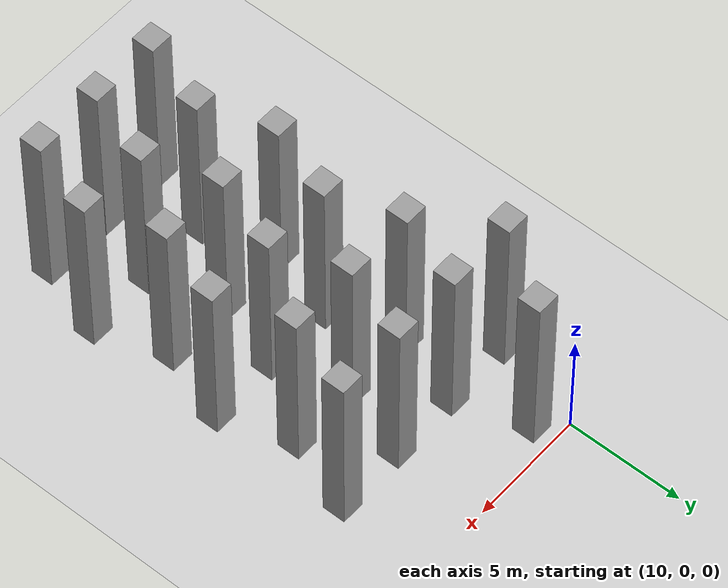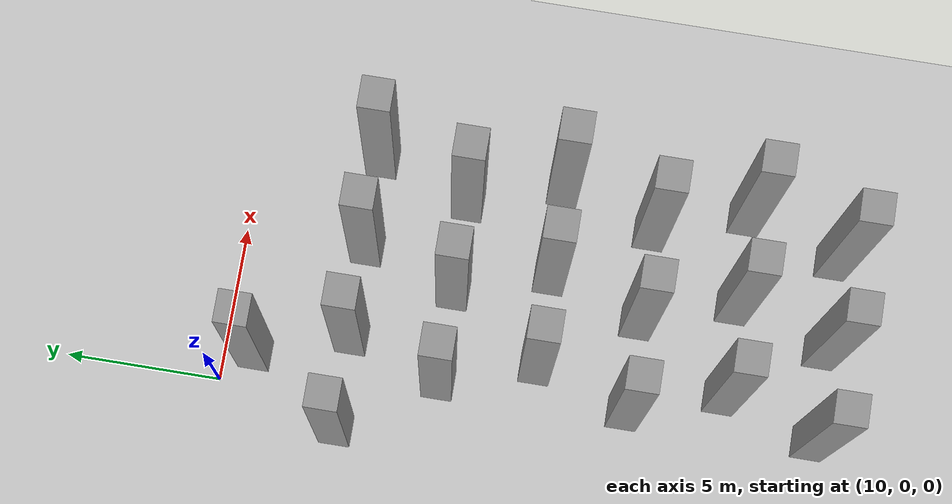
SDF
<sdf version="1.7">
 <world name="default">
  <model name="ground_plane">
   <static>1</static>
   <link name="link">
    <collision name="collision">
     <geometry><plane><normal>0 0 1</normal><size>100 100</size></plane></geometry>
     <surface>
      <contact><collide_bitmask>65535</collide_bitmask></contact>
      <friction><ode><mu>100</mu><mu2>50</mu2></ode></friction>
     </surface>
    </collision>
    <visual name="visual">
     <cast_shadows>0</cast_shadows>
     <geometry><plane><normal>0 0 1</normal><size>100 100</size></plane></geometry>
     <material>
      <script><uri>file://media/materials/scripts/gazebo.material</uri><name>Gazebo/Grey</name></script>
     </material>
    </visual>
   </link>
  </model>
  <model name="unit_box_static10">
   <link name="link">
    <inertial>
     <mass>1</mass>
     <inertia>
      <ixx>0.166667</ixx>
      <ixy>0</ixy>
      <ixz>0</ixz>
      <iyy>0.166667</iyy>
      <iyz>0</iyz>
      <izz>0.166667</izz>
     </inertia>
    </inertial>
    <visual name="visual">
     <geometry><box><size>1 1 8</size></box></geometry>
     <material>
      <script><name>Gazebo/Grey</name><uri>file://media/materials/scripts/gazebo.material</uri></script>
      <shader type="pixel"/>
     </material>
    </visual>
    <collision name="collision">
     <geometry><box><size>1 1 8</size></box></geometry>
     <surface>
      <friction>
       <ode><mu>1</mu><mu2>1</mu2><fdir1>0 0 0</fdir1><slip1>0</slip1><slip2>0</slip2></ode>
       <torsional>
        <coefficient>1</coefficient>
        <patch_radius>0</patch_radius>
        <surface_radius>0</surface_radius>
        <use_patch_radius>1</use_patch_radius>
        <ode><slip>0</slip></ode>
       </torsional>
      </friction>
      <bounce><restitution_coefficient>0</restitution_coefficient><threshold>1e+06</threshold></bounce>
      <contact>
       <collide_without_contact>0</collide_without_contact>
       <collide_without_contact_bitmask>1</collide_without_contact_bitmask>
       <collide_bitmask>1</collide_bitmask>
       <ode>
        <soft_cfm>0</soft_cfm>
        <soft_erp>0.2</soft_erp>
        <kp>1e+13</kp>
        <kd>1</kd>
        <max_vel>0.01</max_vel>
        <min_depth>0</min_depth>
       </ode>
       <bullet>
        <split_impulse>1</split_impulse>
        <split_impulse_penetration_threshold>-0.01</split_impulse_penetration_threshold>
        <soft_cfm>0</soft_cfm>
        <soft_erp>0.2</soft_erp>
        <kp>1e+13</kp>
        <kd>1</kd>
       </bullet>
      </contact>
     </surface>
    </collision>
   </link>
   <static>1</static>
   <pose>11 -19 4 0 -0 0</pose>
  </model>
  <model name="unit_box_static11">
   <link name="link">
    <inertial>
     <mass>1</mass>
     <inertia>
      <ixx>0.166667</ixx>
      <ixy>0</ixy>
      <ixz>0</ixz>
      <iyy>0.166667</iyy>
      <iyz>0</iyz>
      <izz>0.166667</izz>
     </inertia>
    </inertial>
    <visual name="visual">
     <geometry><box><size>1 1 8</size></box></geometry>
     <material>
      <script><name>Gazebo/Grey</name><uri>file://media/materials/scripts/gazebo.material</uri></script>
      <shader type="pixel"/>
     </material>
    </visual>
    <collision name="collision">
     <geometry><box><size>1 1 8</size></box></geometry>
     <surface>
      <friction>
       <ode><mu>1</mu><mu2>1</mu2><fdir1>0 0 0</fdir1><slip1>0</slip1><slip2>0</slip2></ode>
       <torsional>
        <coefficient>1</coefficient>
        <patch_radius>0</patch_radius>
        <surface_radius>0</surface_radius>
        <use_patch_radius>1</use_patch_radius>
        <ode><slip>0</slip></ode>
       </torsional>
      </friction>
      <bounce><restitution_coefficient>0</restitution_coefficient><threshold>1e+06</threshold></bounce>
      <contact>
       <collide_without_contact>0</collide_without_contact>
       <collide_without_contact_bitmask>1</collide_without_contact_bitmask>
       <collide_bitmask>1</collide_bitmask>
       <ode>
        <soft_cfm>0</soft_cfm>
        <soft_erp>0.2</soft_erp>
        <kp>1e+13</kp>
        <kd>1</kd>
        <max_vel>0.01</max_vel>
        <min_depth>0</min_depth>
       </ode>
       <bullet>
        <split_impulse>1</split_impulse>
        <split_impulse_penetration_threshold>-0.01</split_impulse_penetration_threshold>
        <soft_cfm>0</soft_cfm>
        <soft_erp>0.2</soft_erp>
        <kp>1e+13</kp>
        <kd>1</kd>
       </bullet>
      </contact>
     </surface>
    </collision>
   </link>
   <static>1</static>
   <pose>14 -19 4 0 -0 0</pose>
  </model>
  <model name="unit_box_static12">
   <link name="link">
    <inertial>
     <mass>1</mass>
     <inertia>
      <ixx>0.166667</ixx>
      <ixy>0</ixy>
      <ixz>0</ixz>
      <iyy>0.166667</iyy>
      <iyz>0</iyz>
      <izz>0.166667</izz>
     </inertia>
    </inertial>
    <visual name="visual">
     <geometry><box><size>1 1 8</size></box></geometry>
     <material>
      <script><name>Gazebo/Grey</name><uri>file://media/materials/scripts/gazebo.material</uri></script>
      <shader type="pixel"/>
     </material>
    </visual>
    <collision name="collision">
     <geometry><box><size>1 1 8</size></box></geometry>
     <surface>
      <friction>
       <ode><mu>1</mu><mu2>1</mu2><fdir1>0 0 0</fdir1><slip1>0</slip1><slip2>0</slip2></ode>
       <torsional>
        <coefficient>1</coefficient>
        <patch_radius>0</patch_radius>
        <surface_radius>0</surface_radius>
        <use_patch_radius>1</use_patch_radius>
        <ode><slip>0</slip></ode>
       </torsional>
      </friction>
      <bounce><restitution_coefficient>0</restitution_coefficient><threshold>1e+06</threshold></bounce>
      <contact>
       <collide_without_contact>0</collide_without_contact>
       <collide_without_contact_bitmask>1</collide_without_contact_bitmask>
       <collide_bitmask>1</collide_bitmask>
       <ode>
        <soft_cfm>0</soft_cfm>
        <soft_erp>0.2</soft_erp>
        <kp>1e+13</kp>
        <kd>1</kd>
        <max_vel>0.01</max_vel>
        <min_depth>0</min_depth>
       </ode>
       <bullet>
        <split_impulse>1</split_impulse>
        <split_impulse_penetration_threshold>-0.01</split_impulse_penetration_threshold>
        <soft_cfm>0</soft_cfm>
        <soft_erp>0.2</soft_erp>
        <kp>1e+13</kp>
        <kd>1</kd>
       </bullet>
      </contact>
     </surface>
    </collision>
   </link>
   <static>1</static>
   <pose>17 -19 4 0 -0 0</pose>
  </model>
  <model name="unit_box_static23">
   <link name="link">
    <inertial>
     <mass>1</mass>
     <inertia>
      <ixx>0.166667</ixx>
      <ixy>0</ixy>
      <ixz>0</ixz>
      <iyy>0.166667</iyy>
      <iyz>0</iyz>
      <izz>0.166667</izz>
     </inertia>
    </inertial>
    <visual name="visual">
     <geometry><box><size>1 1 8</size></box></geometry>
     <material>
      <script><name>Gazebo/Grey</name><uri>file://media/materials/scripts/gazebo.material</uri></script>
      <shader type="pixel"/>
     </material>
    </visual>
    <collision name="collision">
     <geometry><box><size>1 1 8</size></box></geometry>
     <surface>
      <friction>
       <ode><mu>1</mu><mu2>1</mu2><fdir1>0 0 0</fdir1><slip1>0</slip1><slip2>0</slip2></ode>
       <torsional>
        <coefficient>1</coefficient>
        <patch_radius>0</patch_radius>
        <surface_radius>0</surface_radius>
        <use_patch_radius>1</use_patch_radius>
        <ode><slip>0</slip></ode>
       </torsional>
      </friction>
      <bounce><restitution_coefficient>0</restitution_coefficient><threshold>1e+06</threshold></bounce>
      <contact>
       <collide_without_contact>0</collide_without_contact>
       <collide_without_contact_bitmask>1</collide_without_contact_bitmask>
       <collide_bitmask>1</collide_bitmask>
       <ode>
        <soft_cfm>0</soft_cfm>
        <soft_erp>0.2</soft_erp>
        <kp>1e+13</kp>
        <kd>1</kd>
        <max_vel>0.01</max_vel>
        <min_depth>0</min_depth>
       </ode>
       <bullet>
        <split_impulse>1</split_impulse>
        <split_impulse_penetration_threshold>-0.01</split_impulse_penetration_threshold>
        <soft_cfm>0</soft_cfm>
        <soft_erp>0.2</soft_erp>
        <kp>1e+13</kp>
        <kd>1</kd>
       </bullet>
      </contact>
     </surface>
    </collision>
   </link>
   <static>1</static>
   <pose>12 -16 4 0 -0 0</pose>
  </model>
  <model name="unit_box_static24">
   <link name="link">
    <inertial>
     <mass>1</mass>
     <inertia>
      <ixx>0.166667</ixx>
      <ixy>0</ixy>
      <ixz>0</ixz>
      <iyy>0.166667</iyy>
      <iyz>0</iyz>
      <izz>0.166667</izz>
     </inertia>
    </inertial>
    <visual name="visual">
     <geometry><box><size>1 1 8</size></box></geometry>
     <material>
      <script><name>Gazebo/Grey</name><uri>file://media/materials/scripts/gazebo.material</uri></script>
      <shader type="pixel"/>
     </material>
    </visual>
    <collision name="collision">
     <geometry><box><size>1 1 8</size></box></geometry>
     <surface>
      <friction>
       <ode><mu>1</mu><mu2>1</mu2><fdir1>0 0 0</fdir1><slip1>0</slip1><slip2>0</slip2></ode>
       <torsional>
        <coefficient>1</coefficient>
        <patch_radius>0</patch_radius>
        <surface_radius>0</surface_radius>
        <use_patch_radius>1</use_patch_radius>
        <ode><slip>0</slip></ode>
       </torsional>
      </friction>
      <bounce><restitution_coefficient>0</restitution_coefficient><threshold>1e+06</threshold></bounce>
      <contact>
       <collide_without_contact>0</collide_without_contact>
       <collide_without_contact_bitmask>1</collide_without_contact_bitmask>
       <collide_bitmask>1</collide_bitmask>
       <ode>
        <soft_cfm>0</soft_cfm>
        <soft_erp>0.2</soft_erp>
        <kp>1e+13</kp>
        <kd>1</kd>
        <max_vel>0.01</max_vel>
        <min_depth>0</min_depth>
       </ode>
       <bullet>
        <split_impulse>1</split_impulse>
        <split_impulse_penetration_threshold>-0.01</split_impulse_penetration_threshold>
        <soft_cfm>0</soft_cfm>
        <soft_erp>0.2</soft_erp>
        <kp>1e+13</kp>
        <kd>1</kd>
       </bullet>
      </contact>
     </surface>
    </collision>
   </link>
   <static>1</static>
   <pose>15 -16 4 0 -0 0</pose>
  </model>
  <model name="unit_box_static25">
   <link name="link">
    <inertial>
     <mass>1</mass>
     <inertia>
      <ixx>0.166667</ixx>
      <ixy>0</ixy>
      <ixz>0</ixz>
      <iyy>0.166667</iyy>
      <iyz>0</iyz>
      <izz>0.166667</izz>
     </inertia>
    </inertial>
    <visual name="visual">
     <geometry><box><size>1 1 8</size></box></geometry>
     <material>
      <script><name>Gazebo/Grey</name><uri>file://media/materials/scripts/gazebo.material</uri></script>
      <shader type="pixel"/>
     </material>
    </visual>
    <collision name="collision">
     <geometry><box><size>1 1 8</size></box></geometry>
     <surface>
      <friction>
       <ode><mu>1</mu><mu2>1</mu2><fdir1>0 0 0</fdir1><slip1>0</slip1><slip2>0</slip2></ode>
       <torsional>
        <coefficient>1</coefficient>
        <patch_radius>0</patch_radius>
        <surface_radius>0</surface_radius>
        <use_patch_radius>1</use_patch_radius>
        <ode><slip>0</slip></ode>
       </torsional>
      </friction>
      <bounce><restitution_coefficient>0</restitution_coefficient><threshold>1e+06</threshold></bounce>
      <contact>
       <collide_without_contact>0</collide_without_contact>
       <collide_without_contact_bitmask>1</collide_without_contact_bitmask>
       <collide_bitmask>1</collide_bitmask>
       <ode>
        <soft_cfm>0</soft_cfm>
        <soft_erp>0.2</soft_erp>
        <kp>1e+13</kp>
        <kd>1</kd>
        <max_vel>0.01</max_vel>
        <min_depth>0</min_depth>
       </ode>
       <bullet>
        <split_impulse>1</split_impulse>
        <split_impulse_penetration_threshold>-0.01</split_impulse_penetration_threshold>
        <soft_cfm>0</soft_cfm>
        <soft_erp>0.2</soft_erp>
        <kp>1e+13</kp>
        <kd>1</kd>
       </bullet>
      </contact>
     </surface>
    </collision>
   </link>
   <static>1</static>
   <pose>18 -16 4 0 -0 0</pose>
  </model>
  <model name="unit_box_static35">
   <link name="link">
    <inertial>
     <mass>1</mass>
     <inertia>
      <ixx>0.166667</ixx>
      <ixy>0</ixy>
      <ixz>0</ixz>
      <iyy>0.166667</iyy>
      <iyz>0</iyz>
      <izz>0.166667</izz>
     </inertia>
    </inertial>
    <visual name="visual">
     <geometry><box><size>1 1 8</size></box></geometry>
     <material>
      <script><name>Gazebo/Grey</name><uri>file://media/materials/scripts/gazebo.material</uri></script>
      <shader type="pixel"/>
     </material>
    </visual>
    <collision name="collision">
     <geometry><box><size>1 1 8</size></box></geometry>
     <surface>
      <friction>
       <ode><mu>1</mu><mu2>1</mu2><fdir1>0 0 0</fdir1><slip1>0</slip1><slip2>0</slip2></ode>
       <torsional>
        <coefficient>1</coefficient>
        <patch_radius>0</patch_radius>
        <surface_radius>0</surface_radius>
        <use_patch_radius>1</use_patch_radius>
        <ode><slip>0</slip></ode>
       </torsional>
      </friction>
      <bounce><restitution_coefficient>0</restitution_coefficient><threshold>1e+06</threshold></bounce>
      <contact>
       <collide_without_contact>0</collide_without_contact>
       <collide_without_contact_bitmask>1</collide_without_contact_bitmask>
       <collide_bitmask>1</collide_bitmask>
       <ode>
        <soft_cfm>0</soft_cfm>
        <soft_erp>0.2</soft_erp>
        <kp>1e+13</kp>
        <kd>1</kd>
        <max_vel>0.01</max_vel>
        <min_depth>0</min_depth>
       </ode>
       <bullet>
        <split_impulse>1</split_impulse>
        <split_impulse_penetration_threshold>-0.01</split_impulse_penetration_threshold>
        <soft_cfm>0</soft_cfm>
        <soft_erp>0.2</soft_erp>
        <kp>1e+13</kp>
        <kd>1</kd>
       </bullet>
      </contact>
     </surface>
    </collision>
   </link>
   <static>1</static>
   <pose>11 -13 4 0 -0 0</pose>
  </model>
  <model name="unit_box_static36">
   <link name="link">
    <inertial>
     <mass>1</mass>
     <inertia>
      <ixx>0.166667</ixx>
      <ixy>0</ixy>
      <ixz>0</ixz>
      <iyy>0.166667</iyy>
      <iyz>0</iyz>
      <izz>0.166667</izz>
     </inertia>
    </inertial>
    <visual name="visual">
     <geometry><box><size>1 1 8</size></box></geometry>
     <material>
      <script><name>Gazebo/Grey</name><uri>file://media/materials/scripts/gazebo.material</uri></script>
      <shader type="pixel"/>
     </material>
    </visual>
    <collision name="collision">
     <geometry><box><size>1 1 8</size></box></geometry>
     <surface>
      <friction>
       <ode><mu>1</mu><mu2>1</mu2><fdir1>0 0 0</fdir1><slip1>0</slip1><slip2>0</slip2></ode>
       <torsional>
        <coefficient>1</coefficient>
        <patch_radius>0</patch_radius>
        <surface_radius>0</surface_radius>
        <use_patch_radius>1</use_patch_radius>
        <ode><slip>0</slip></ode>
       </torsional>
      </friction>
      <bounce><restitution_coefficient>0</restitution_coefficient><threshold>1e+06</threshold></bounce>
      <contact>
       <collide_without_contact>0</collide_without_contact>
       <collide_without_contact_bitmask>1</collide_without_contact_bitmask>
       <collide_bitmask>1</collide_bitmask>
       <ode>
        <soft_cfm>0</soft_cfm>
        <soft_erp>0.2</soft_erp>
        <kp>1e+13</kp>
        <kd>1</kd>
        <max_vel>0.01</max_vel>
        <min_depth>0</min_depth>
       </ode>
       <bullet>
        <split_impulse>1</split_impulse>
        <split_impulse_penetration_threshold>-0.01</split_impulse_penetration_threshold>
        <soft_cfm>0</soft_cfm>
        <soft_erp>0.2</soft_erp>
        <kp>1e+13</kp>
        <kd>1</kd>
       </bullet>
      </contact>
     </surface>
    </collision>
   </link>
   <static>1</static>
   <pose>14 -13 4 0 -0 0</pose>
  </model>
  <model name="unit_box_static37">
   <link name="link">
    <inertial>
     <mass>1</mass>
     <inertia>
      <ixx>0.166667</ixx>
      <ixy>0</ixy>
      <ixz>0</ixz>
      <iyy>0.166667</iyy>
      <iyz>0</iyz>
      <izz>0.166667</izz>
     </inertia>
    </inertial>
    <visual name="visual">
     <geometry><box><size>1 1 8</size></box></geometry>
     <material>
      <script><name>Gazebo/Grey</name><uri>file://media/materials/scripts/gazebo.material</uri></script>
      <shader type="pixel"/>
     </material>
    </visual>
    <collision name="collision">
     <geometry><box><size>1 1 8</size></box></geometry>
     <surface>
      <friction>
       <ode><mu>1</mu><mu2>1</mu2><fdir1>0 0 0</fdir1><slip1>0</slip1><slip2>0</slip2></ode>
       <torsional>
        <coefficient>1</coefficient>
        <patch_radius>0</patch_radius>
        <surface_radius>0</surface_radius>
        <use_patch_radius>1</use_patch_radius>
        <ode><slip>0</slip></ode>
       </torsional>
      </friction>
      <bounce><restitution_coefficient>0</restitution_coefficient><threshold>1e+06</threshold></bounce>
      <contact>
       <collide_without_contact>0</collide_without_contact>
       <collide_without_contact_bitmask>1</collide_without_contact_bitmask>
       <collide_bitmask>1</collide_bitmask>
       <ode>
        <soft_cfm>0</soft_cfm>
        <soft_erp>0.2</soft_erp>
        <kp>1e+13</kp>
        <kd>1</kd>
        <max_vel>0.01</max_vel>
        <min_depth>0</min_depth>
       </ode>
       <bullet>
        <split_impulse>1</split_impulse>
        <split_impulse_penetration_threshold>-0.01</split_impulse_penetration_threshold>
        <soft_cfm>0</soft_cfm>
        <soft_erp>0.2</soft_erp>
        <kp>1e+13</kp>
        <kd>1</kd>
       </bullet>
      </contact>
     </surface>
    </collision>
   </link>
   <static>1</static>
   <pose>17 -13 4 0 -0 0</pose>
  </model>
  <model name="unit_box_static48">
   <link name="link">
    <inertial>
     <mass>1</mass>
     <inertia>
      <ixx>0.166667</ixx>
      <ixy>0</ixy>
      <ixz>0</ixz>
      <iyy>0.166667</iyy>
      <iyz>0</iyz>
      <izz>0.166667</izz>
     </inertia>
    </inertial>
    <visual name="visual">
     <geometry><box><size>1 1 8</size></box></geometry>
     <material>
      <script><name>Gazebo/Grey</name><uri>file://media/materials/scripts/gazebo.material</uri></script>
      <shader type="pixel"/>
     </material>
    </visual>
    <collision name="collision">
     <geometry><box><size>1 1 8</size></box></geometry>
     <surface>
      <friction>
       <ode><mu>1</mu><mu2>1</mu2><fdir1>0 0 0</fdir1><slip1>0</slip1><slip2>0</slip2></ode>
       <torsional>
        <coefficient>1</coefficient>
        <patch_radius>0</patch_radius>
        <surface_radius>0</surface_radius>
        <use_patch_radius>1</use_patch_radius>
        <ode><slip>0</slip></ode>
       </torsional>
      </friction>
      <bounce><restitution_coefficient>0</restitution_coefficient><threshold>1e+06</threshold></bounce>
      <contact>
       <collide_without_contact>0</collide_without_contact>
       <collide_without_contact_bitmask>1</collide_without_contact_bitmask>
       <collide_bitmask>1</collide_bitmask>
       <ode>
        <soft_cfm>0</soft_cfm>
        <soft_erp>0.2</soft_erp>
        <kp>1e+13</kp>
        <kd>1</kd>
        <max_vel>0.01</max_vel>
        <min_depth>0</min_depth>
       </ode>
       <bullet>
        <split_impulse>1</split_impulse>
        <split_impulse_penetration_threshold>-0.01</split_impulse_penetration_threshold>
        <soft_cfm>0</soft_cfm>
        <soft_erp>0.2</soft_erp>
        <kp>1e+13</kp>
        <kd>1</kd>
       </bullet>
      </contact>
     </surface>
    </collision>
   </link>
   <static>1</static>
   <pose>12 -10 4 0 -0 0</pose>
  </model>
  <model name="unit_box_static49">
   <link name="link">
    <inertial>
     <mass>1</mass>
     <inertia>
      <ixx>0.166667</ixx>
      <ixy>0</ixy>
      <ixz>0</ixz>
      <iyy>0.166667</iyy>
      <iyz>0</iyz>
      <izz>0.166667</izz>
     </inertia>
    </inertial>
    <visual name="visual">
     <geometry><box><size>1 1 8</size></box></geometry>
     <material>
      <script><name>Gazebo/Grey</name><uri>file://media/materials/scripts/gazebo.material</uri></script>
      <shader type="pixel"/>
     </material>
    </visual>
    <collision name="collision">
     <geometry><box><size>1 1 8</size></box></geometry>
     <surface>
      <friction>
       <ode><mu>1</mu><mu2>1</mu2><fdir1>0 0 0</fdir1><slip1>0</slip1><slip2>0</slip2></ode>
       <torsional>
        <coefficient>1</coefficient>
        <patch_radius>0</patch_radius>
        <surface_radius>0</surface_radius>
        <use_patch_radius>1</use_patch_radius>
        <ode><slip>0</slip></ode>
       </torsional>
      </friction>
      <bounce><restitution_coefficient>0</restitution_coefficient><threshold>1e+06</threshold></bounce>
      <contact>
       <collide_without_contact>0</collide_without_contact>
       <collide_without_contact_bitmask>1</collide_without_contact_bitmask>
       <collide_bitmask>1</collide_bitmask>
       <ode>
        <soft_cfm>0</soft_cfm>
        <soft_erp>0.2</soft_erp>
        <kp>1e+13</kp>
        <kd>1</kd>
        <max_vel>0.01</max_vel>
        <min_depth>0</min_depth>
       </ode>
       <bullet>
        <split_impulse>1</split_impulse>
        <split_impulse_penetration_threshold>-0.01</split_impulse_penetration_threshold>
        <soft_cfm>0</soft_cfm>
        <soft_erp>0.2</soft_erp>
        <kp>1e+13</kp>
        <kd>1</kd>
       </bullet>
      </contact>
     </surface>
    </collision>
   </link>
   <static>1</static>
   <pose>15 -10 4 0 -0 0</pose>
  </model>
  <model name="unit_box_static50">
   <link name="link">
    <inertial>
     <mass>1</mass>
     <inertia>
      <ixx>0.166667</ixx>
      <ixy>0</ixy>
      <ixz>0</ixz>
      <iyy>0.166667</iyy>
      <iyz>0</iyz>
      <izz>0.166667</izz>
     </inertia>
    </inertial>
    <visual name="visual">
     <geometry><box><size>1 1 8</size></box></geometry>
     <material>
      <script><name>Gazebo/Grey</name><uri>file://media/materials/scripts/gazebo.material</uri></script>
      <shader type="pixel"/>
     </material>
    </visual>
    <collision name="collision">
     <geometry><box><size>1 1 8</size></box></geometry>
     <surface>
      <friction>
       <ode><mu>1</mu><mu2>1</mu2><fdir1>0 0 0</fdir1><slip1>0</slip1><slip2>0</slip2></ode>
       <torsional>
        <coefficient>1</coefficient>
        <patch_radius>0</patch_radius>
        <surface_radius>0</surface_radius>
        <use_patch_radius>1</use_patch_radius>
        <ode><slip>0</slip></ode>
       </torsional>
      </friction>
      <bounce><restitution_coefficient>0</restitution_coefficient><threshold>1e+06</threshold></bounce>
      <contact>
       <collide_without_contact>0</collide_without_contact>
       <collide_without_contact_bitmask>1</collide_without_contact_bitmask>
       <collide_bitmask>1</collide_bitmask>
       <ode>
        <soft_cfm>0</soft_cfm>
        <soft_erp>0.2</soft_erp>
        <kp>1e+13</kp>
        <kd>1</kd>
        <max_vel>0.01</max_vel>
        <min_depth>0</min_depth>
       </ode>
       <bullet>
        <split_impulse>1</split_impulse>
        <split_impulse_penetration_threshold>-0.01</split_impulse_penetration_threshold>
        <soft_cfm>0</soft_cfm>
        <soft_erp>0.2</soft_erp>
        <kp>1e+13</kp>
        <kd>1</kd>
       </bullet>
      </contact>
     </surface>
    </collision>
   </link>
   <static>1</static>
   <pose>18 -10 4 0 -0 0</pose>
  </model>
  <model name="unit_box_static60">
   <link name="link">
    <inertial>
     <mass>1</mass>
     <inertia>
      <ixx>0.166667</ixx>
      <ixy>0</ixy>
      <ixz>0</ixz>
      <iyy>0.166667</iyy>
      <iyz>0</iyz>
      <izz>0.166667</izz>
     </inertia>
    </inertial>
    <visual name="visual">
     <geometry><box><size>1 1 8</size></box></geometry>
     <material>
      <script><name>Gazebo/Grey</name><uri>file://media/materials/scripts/gazebo.material</uri></script>
      <shader type="pixel"/>
     </material>
    </visual>
    <collision name="collision">
     <geometry><box><size>1 1 8</size></box></geometry>
     <surface>
      <friction>
       <ode><mu>1</mu><mu2>1</mu2><fdir1>0 0 0</fdir1><slip1>0</slip1><slip2>0</slip2></ode>
       <torsional>
        <coefficient>1</coefficient>
        <patch_radius>0</patch_radius>
        <surface_radius>0</surface_radius>
        <use_patch_radius>1</use_patch_radius>
        <ode><slip>0</slip></ode>
       </torsional>
      </friction>
      <bounce><restitution_coefficient>0</restitution_coefficient><threshold>1e+06</threshold></bounce>
      <contact>
       <collide_without_contact>0</collide_without_contact>
       <collide_without_contact_bitmask>1</collide_without_contact_bitmask>
       <collide_bitmask>1</collide_bitmask>
       <ode>
        <soft_cfm>0</soft_cfm>
        <soft_erp>0.2</soft_erp>
        <kp>1e+13</kp>
        <kd>1</kd>
        <max_vel>0.01</max_vel>
        <min_depth>0</min_depth>
       </ode>
       <bullet>
        <split_impulse>1</split_impulse>
        <split_impulse_penetration_threshold>-0.01</split_impulse_penetration_threshold>
        <soft_cfm>0</soft_cfm>
        <soft_erp>0.2</soft_erp>
        <kp>1e+13</kp>
        <kd>1</kd>
       </bullet>
      </contact>
     </surface>
    </collision>
   </link>
   <static>1</static>
   <pose>11 -7 4 0 -0 0</pose>
  </model>
  <model name="unit_box_static61">
   <link name="link">
    <inertial>
     <mass>1</mass>
     <inertia>
      <ixx>0.166667</ixx>
      <ixy>0</ixy>
      <ixz>0</ixz>
      <iyy>0.166667</iyy>
      <iyz>0</iyz>
      <izz>0.166667</izz>
     </inertia>
    </inertial>
    <visual name="visual">
     <geometry><box><size>1 1 8</size></box></geometry>
     <material>
      <script><name>Gazebo/Grey</name><uri>file://media/materials/scripts/gazebo.material</uri></script>
      <shader type="pixel"/>
     </material>
    </visual>
    <collision name="collision">
     <geometry><box><size>1 1 8</size></box></geometry>
     <surface>
      <friction>
       <ode><mu>1</mu><mu2>1</mu2><fdir1>0 0 0</fdir1><slip1>0</slip1><slip2>0</slip2></ode>
       <torsional>
        <coefficient>1</coefficient>
        <patch_radius>0</patch_radius>
        <surface_radius>0</surface_radius>
        <use_patch_radius>1</use_patch_radius>
        <ode><slip>0</slip></ode>
       </torsional>
      </friction>
      <bounce><restitution_coefficient>0</restitution_coefficient><threshold>1e+06</threshold></bounce>
      <contact>
       <collide_without_contact>0</collide_without_contact>
       <collide_without_contact_bitmask>1</collide_without_contact_bitmask>
       <collide_bitmask>1</collide_bitmask>
       <ode>
        <soft_cfm>0</soft_cfm>
        <soft_erp>0.2</soft_erp>
        <kp>1e+13</kp>
        <kd>1</kd>
        <max_vel>0.01</max_vel>
        <min_depth>0</min_depth>
       </ode>
       <bullet>
        <split_impulse>1</split_impulse>
        <split_impulse_penetration_threshold>-0.01</split_impulse_penetration_threshold>
        <soft_cfm>0</soft_cfm>
        <soft_erp>0.2</soft_erp>
        <kp>1e+13</kp>
        <kd>1</kd>
       </bullet>
      </contact>
     </surface>
    </collision>
   </link>
   <static>1</static>
   <pose>14 -7 4 0 -0 0</pose>
  </model>
  <model name="unit_box_static62">
   <link name="link">
    <inertial>
     <mass>1</mass>
     <inertia>
      <ixx>0.166667</ixx>
      <ixy>0</ixy>
      <ixz>0</ixz>
      <iyy>0.166667</iyy>
      <iyz>0</iyz>
      <izz>0.166667</izz>
     </inertia>
    </inertial>
    <visual name="visual">
     <geometry><box><size>1 1 8</size></box></geometry>
     <material>
      <script><name>Gazebo/Grey</name><uri>file://media/materials/scripts/gazebo.material</uri></script>
      <shader type="pixel"/>
     </material>
    </visual>
    <collision name="collision">
     <geometry><box><size>1 1 8</size></box></geometry>
     <surface>
      <friction>
       <ode><mu>1</mu><mu2>1</mu2><fdir1>0 0 0</fdir1><slip1>0</slip1><slip2>0</slip2></ode>
       <torsional>
        <coefficient>1</coefficient>
        <patch_radius>0</patch_radius>
        <surface_radius>0</surface_radius>
        <use_patch_radius>1</use_patch_radius>
        <ode><slip>0</slip></ode>
       </torsional>
      </friction>
      <bounce><restitution_coefficient>0</restitution_coefficient><threshold>1e+06</threshold></bounce>
      <contact>
       <collide_without_contact>0</collide_without_contact>
       <collide_without_contact_bitmask>1</collide_without_contact_bitmask>
       <collide_bitmask>1</collide_bitmask>
       <ode>
        <soft_cfm>0</soft_cfm>
        <soft_erp>0.2</soft_erp>
        <kp>1e+13</kp>
        <kd>1</kd>
        <max_vel>0.01</max_vel>
        <min_depth>0</min_depth>
       </ode>
       <bullet>
        <split_impulse>1</split_impulse>
        <split_impulse_penetration_threshold>-0.01</split_impulse_penetration_threshold>
        <soft_cfm>0</soft_cfm>
        <soft_erp>0.2</soft_erp>
        <kp>1e+13</kp>
        <kd>1</kd>
       </bullet>
      </contact>
     </surface>
    </collision>
   </link>
   <static>1</static>
   <pose>17 -7 4 0 -0 0</pose>
  </model>
  <model name="unit_box_static72">
   <link name="link">
    <inertial>
     <mass>1</mass>
     <inertia>
      <ixx>0.166667</ixx>
      <ixy>0</ixy>
      <ixz>0</ixz>
      <iyy>0.166667</iyy>
      <iyz>0</iyz>
      <izz>0.166667</izz>
     </inertia>
    </inertial>
    <visual name="visual">
     <geometry><box><size>1 1 8</size></box></geometry>
     <material>
      <script><name>Gazebo/Grey</name><uri>file://media/materials/scripts/gazebo.material</uri></script>
      <shader type="pixel"/>
     </material>
    </visual>
    <collision name="collision">
     <geometry><box><size>1 1 8</size></box></geometry>
     <surface>
      <friction>
       <ode><mu>1</mu><mu2>1</mu2><fdir1>0 0 0</fdir1><slip1>0</slip1><slip2>0</slip2></ode>
       <torsional>
        <coefficient>1</coefficient>
        <patch_radius>0</patch_radius>
        <surface_radius>0</surface_radius>
        <use_patch_radius>1</use_patch_radius>
        <ode><slip>0</slip></ode>
       </torsional>
      </friction>
      <bounce><restitution_coefficient>0</restitution_coefficient><threshold>1e+06</threshold></bounce>
      <contact>
       <collide_without_contact>0</collide_without_contact>
       <collide_without_contact_bitmask>1</collide_without_contact_bitmask>
       <collide_bitmask>1</collide_bitmask>
       <ode>
        <soft_cfm>0</soft_cfm>
        <soft_erp>0.2</soft_erp>
        <kp>1e+13</kp>
        <kd>1</kd>
        <max_vel>0.01</max_vel>
        <min_depth>0</min_depth>
       </ode>
       <bullet>
        <split_impulse>1</split_impulse>
        <split_impulse_penetration_threshold>-0.01</split_impulse_penetration_threshold>
        <soft_cfm>0</soft_cfm>
        <soft_erp>0.2</soft_erp>
        <kp>1e+13</kp>
        <kd>1</kd>
       </bullet>
      </contact>
     </surface>
    </collision>
   </link>
   <static>1</static>
   <pose>9 -4 4 0 -0 0</pose>
  </model>
  <model name="unit_box_static73">
   <link name="link">
    <inertial>
     <mass>1</mass>
     <inertia>
      <ixx>0.166667</ixx>
      <ixy>0</ixy>
      <ixz>0</ixz>
      <iyy>0.166667</iyy>
      <iyz>0</iyz>
      <izz>0.166667</izz>
     </inertia>
    </inertial>
    <visual name="visual">
     <geometry><box><size>1 1 8</size></box></geometry>
     <material>
      <script><name>Gazebo/Grey</name><uri>file://media/materials/scripts/gazebo.material</uri></script>
      <shader type="pixel"/>
     </material>
    </visual>
    <collision name="collision">
     <geometry><box><size>1 1 8</size></box></geometry>
     <surface>
      <friction>
       <ode><mu>1</mu><mu2>1</mu2><fdir1>0 0 0</fdir1><slip1>0</slip1><slip2>0</slip2></ode>
       <torsional>
        <coefficient>1</coefficient>
        <patch_radius>0</patch_radius>
        <surface_radius>0</surface_radius>
        <use_patch_radius>1</use_patch_radius>
        <ode><slip>0</slip></ode>
       </torsional>
      </friction>
      <bounce><restitution_coefficient>0</restitution_coefficient><threshold>1e+06</threshold></bounce>
      <contact>
       <collide_without_contact>0</collide_without_contact>
       <collide_without_contact_bitmask>1</collide_without_contact_bitmask>
       <collide_bitmask>1</collide_bitmask>
       <ode>
        <soft_cfm>0</soft_cfm>
        <soft_erp>0.2</soft_erp>
        <kp>1e+13</kp>
        <kd>1</kd>
        <max_vel>0.01</max_vel>
        <min_depth>0</min_depth>
       </ode>
       <bullet>
        <split_impulse>1</split_impulse>
        <split_impulse_penetration_threshold>-0.01</split_impulse_penetration_threshold>
        <soft_cfm>0</soft_cfm>
        <soft_erp>0.2</soft_erp>
        <kp>1e+13</kp>
        <kd>1</kd>
       </bullet>
      </contact>
     </surface>
    </collision>
   </link>
   <static>1</static>
   <pose>12 -4 4 0 -0 0</pose>
  </model>
  <model name="unit_box_static74">
   <link name="link">
    <inertial>
     <mass>1</mass>
     <inertia>
      <ixx>0.166667</ixx>
      <ixy>0</ixy>
      <ixz>0</ixz>
      <iyy>0.166667</iyy>
      <iyz>0</iyz>
      <izz>0.166667</izz>
     </inertia>
    </inertial>
    <visual name="visual">
     <geometry><box><size>1 1 8</size></box></geometry>
     <material>
      <script><name>Gazebo/Grey</name><uri>file://media/materials/scripts/gazebo.material</uri></script>
      <shader type="pixel"/>
     </material>
    </visual>
    <collision name="collision">
     <geometry><box><size>1 1 8</size></box></geometry>
     <surface>
      <friction>
       <ode><mu>1</mu><mu2>1</mu2><fdir1>0 0 0</fdir1><slip1>0</slip1><slip2>0</slip2></ode>
       <torsional>
        <coefficient>1</coefficient>
        <patch_radius>0</patch_radius>
        <surface_radius>0</surface_radius>
        <use_patch_radius>1</use_patch_radius>
        <ode><slip>0</slip></ode>
       </torsional>
      </friction>
      <bounce><restitution_coefficient>0</restitution_coefficient><threshold>1e+06</threshold></bounce>
      <contact>
       <collide_without_contact>0</collide_without_contact>
       <collide_without_contact_bitmask>1</collide_without_contact_bitmask>
       <collide_bitmask>1</collide_bitmask>
       <ode>
        <soft_cfm>0</soft_cfm>
        <soft_erp>0.2</soft_erp>
        <kp>1e+13</kp>
        <kd>1</kd>
        <max_vel>0.01</max_vel>
        <min_depth>0</min_depth>
       </ode>
       <bullet>
        <split_impulse>1</split_impulse>
        <split_impulse_penetration_threshold>-0.01</split_impulse_penetration_threshold>
        <soft_cfm>0</soft_cfm>
        <soft_erp>0.2</soft_erp>
        <kp>1e+13</kp>
        <kd>1</kd>
       </bullet>
      </contact>
     </surface>
    </collision>
   </link>
   <static>1</static>
   <pose>15 -4 4 0 -0 0</pose>
  </model>
  <model name="unit_box_static75">
   <link name="link">
    <inertial>
     <mass>1</mass>
     <inertia>
      <ixx>0.166667</ixx>
      <ixy>0</ixy>
      <ixz>0</ixz>
      <iyy>0.166667</iyy>
      <iyz>0</iyz>
      <izz>0.166667</izz>
     </inertia>
    </inertial>
    <visual name="visual">
     <geometry><box><size>1 1 8</size></box></geometry>
     <material>
      <script><name>Gazebo/Grey</name><uri>file://media/materials/scripts/gazebo.material</uri></script>
      <shader type="pixel"/>
     </material>
    </visual>
    <collision name="collision">
     <geometry><box><size>1 1 8</size></box></geometry>
     <surface>
      <friction>
       <ode><mu>1</mu><mu2>1</mu2><fdir1>0 0 0</fdir1><slip1>0</slip1><slip2>0</slip2></ode>
       <torsional>
        <coefficient>1</coefficient>
        <patch_radius>0</patch_radius>
        <surface_radius>0</surface_radius>
        <use_patch_radius>1</use_patch_radius>
        <ode><slip>0</slip></ode>
       </torsional>
      </friction>
      <bounce><restitution_coefficient>0</restitution_coefficient><threshold>1e+06</threshold></bounce>
      <contact>
       <collide_without_contact>0</collide_without_contact>
       <collide_without_contact_bitmask>1</collide_without_contact_bitmask>
       <collide_bitmask>1</collide_bitmask>
       <ode>
        <soft_cfm>0</soft_cfm>
        <soft_erp>0.2</soft_erp>
        <kp>1e+13</kp>
        <kd>1</kd>
        <max_vel>0.01</max_vel>
        <min_depth>0</min_depth>
       </ode>
       <bullet>
        <split_impulse>1</split_impulse>
        <split_impulse_penetration_threshold>-0.01</split_impulse_penetration_threshold>
        <soft_cfm>0</soft_cfm>
        <soft_erp>0.2</soft_erp>
        <kp>1e+13</kp>
        <kd>1</kd>
       </bullet>
      </contact>
     </surface>
    </collision>
   </link>
   <static>1</static>
   <pose>18 -4 4 0 -0 0</pose>
  </model>
  <model name="unit_box_static85">
   <link name="link">
    <inertial>
     <mass>1</mass>
     <inertia>
      <ixx>0.166667</ixx>
      <ixy>0</ixy>
      <ixz>0</ixz>
      <iyy>0.166667</iyy>
      <iyz>0</iyz>
      <izz>0.166667</izz>
     </inertia>
    </inertial>
    <visual name="visual">
     <geometry><box><size>1 1 8</size></box></geometry>
     <material>
      <script><name>Gazebo/Grey</name><uri>file://media/materials/scripts/gazebo.material</uri></script>
      <shader type="pixel"/>
     </material>
    </visual>
    <collision name="collision">
     <geometry><box><size>1 1 8</size></box></geometry>
     <surface>
      <friction>
       <ode><mu>1</mu><mu2>1</mu2><fdir1>0 0 0</fdir1><slip1>0</slip1><slip2>0</slip2></ode>
       <torsional>
        <coefficient>1</coefficient>
        <patch_radius>0</patch_radius>
        <surface_radius>0</surface_radius>
        <use_patch_radius>1</use_patch_radius>
        <ode><slip>0</slip></ode>
       </torsional>
      </friction>
      <bounce><restitution_coefficient>0</restitution_coefficient><threshold>1e+06</threshold></bounce>
      <contact>
       <collide_without_contact>0</collide_without_contact>
       <collide_without_contact_bitmask>1</collide_without_contact_bitmask>
       <collide_bitmask>1</collide_bitmask>
       <ode>
        <soft_cfm>0</soft_cfm>
        <soft_erp>0.2</soft_erp>
        <kp>1e+13</kp>
        <kd>1</kd>
        <max_vel>0.01</max_vel>
        <min_depth>0</min_depth>
       </ode>
       <bullet>
        <split_impulse>1</split_impulse>
        <split_impulse_penetration_threshold>-0.01</split_impulse_penetration_threshold>
        <soft_cfm>0</soft_cfm>
        <soft_erp>0.2</soft_erp>
        <kp>1e+13</kp>
        <kd>1</kd>
       </bullet>
      </contact>
     </surface>
    </collision>
   </link>
   <static>1</static>
   <pose>11 -1 4 0 -0 0</pose>
  </model>
 </world>
</sdf>
